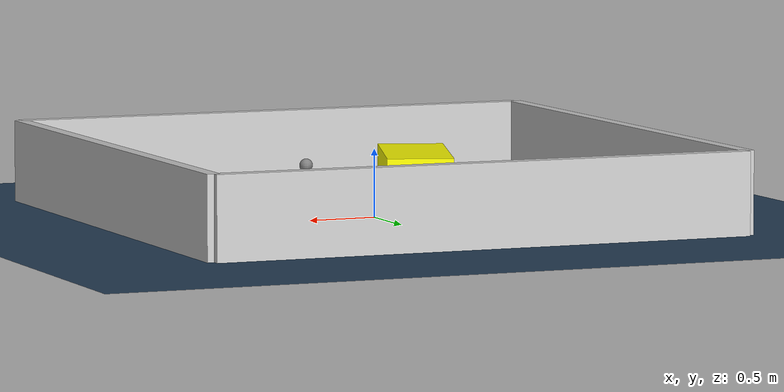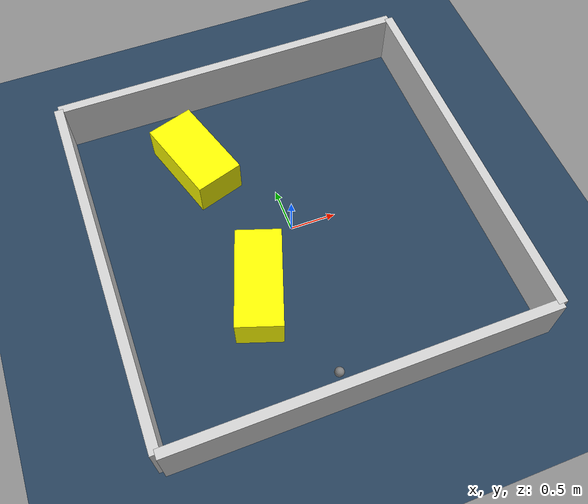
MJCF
<?xml version="1.0" ?>
<mujoco model="generated_environment">
  <option timestep="0.01" integrator="RK4" cone="elliptic"/>
  <default>
    <geom density="1"/>
  </default>
  <asset>
    <texture builtin="gradient" height="3072" rgb1="0.3 0.5 0.7" rgb2="0 0 0" type="skybox" width="512"/>
    <texture builtin="checker" height="300" mark="edge" markrgb="0.8 0.8 0.8" name="groundplane" rgb1="0.2 0.3 0.4" rgb2="0.1 0.2 0.3" type="2d" width="300"/>
    <material name="groundplane" reflectance="0.2" texrepeat="5 5" texture="groundplane" texuniform="true"/>
    <material name="robot" rgba="0.0 1.0 0.0 1"/>
  </asset>
  <worldbody>
    <light dir="0 0 -1" directional="true" pos="0 0 1.5"/>
    <geom condim="4" friction="1.0 0.005 0.001" material="groundplane" name="floor" size="0 0 0.05" type="plane"/>
    <body name="walls">
      <geom name="wall_1" condim="4" pos="-2.0 0.0 0.3" rgba="0.800000011920929 0.800000011920929 0.800000011920929 1.0" size="0.05 2.0 0.3" type="box"/>
      <geom name="wall_2" condim="4" pos="2.0 0.0 0.3" rgba="0.800000011920929 0.800000011920929 0.800000011920929 1.0" size="0.05 2.0 0.3" type="box"/>
      <geom name="wall_3" condim="4" pos="0.0 -2.0 0.3" rgba="0.800000011920929 0.800000011920929 0.800000011920929 1.0" size="2.0 0.05 0.3" type="box"/>
      <geom name="wall_4" condim="4" pos="0.0 2.0 0.3" rgba="0.800000011920929 0.800000011920929 0.800000011920929 1.0" size="2.0 0.05 0.3" type="box"/>
    </body>
    <body name="robot">
      <joint name="joint_x" type="slide" pos="0 0 0" axis="1 0 0"/>
      <joint name="joint_y" type="slide" pos="0 0 0" axis="0 1 0"/>
      <geom name="robot" type="sphere" pos="-0.17321605006156005 -1.752080545553437 0.2" size="0.05" mass="5." friction="1.0 0.005 0.0001" condim="4"/>
      <site name="sensor_ball"/>
    </body>
    <body name="obstacle_1_movable">
      <geom name="obstacle_1_movable" condim="4" pos="-0.583439620909505 -0.6161687970153802 0.2" euler="0 0 71.11659210651857" friction="1.0 0.005 0.001" rgba="1 1 0 1" size="0.5408100143316927 0.24338717166326124 0.2" type="box" mass="0.1"/>
      <joint type="free"/>
    </body>
    <body name="obstacle_2_movable">
      <geom name="obstacle_2_movable" condim="4" pos="-0.7274297968752798 1.1173666981356805 0.2" euler="0 0 107.65984133895364" friction="1.0 0.005 0.001" rgba="1 1 0 1" size="0.4906890406567581 0.26545976701357843 0.2" type="box" mass="0.1"/>
      <joint type="free"/>
    </body>
  </worldbody>
  <actuator>
    <motor name="actuator_x" joint="joint_x" gear="1" ctrlrange="-1 1"/>
    <motor name="actuator_y" joint="joint_y" gear="1" ctrlrange="-1 1"/>
  </actuator>
</mujoco>
